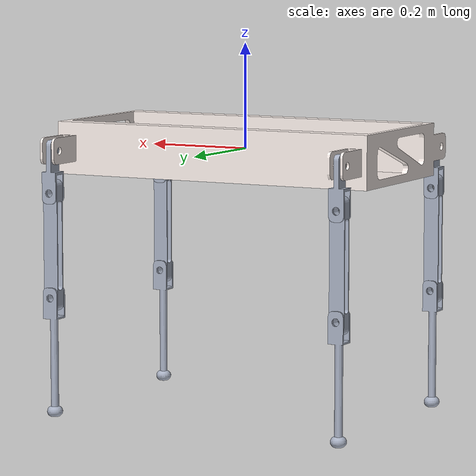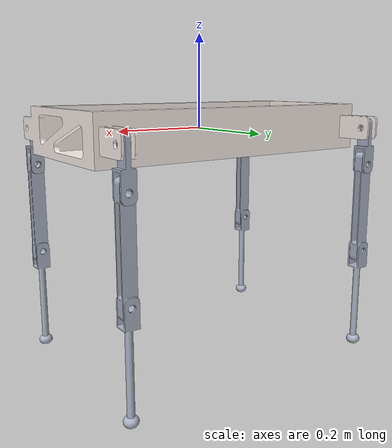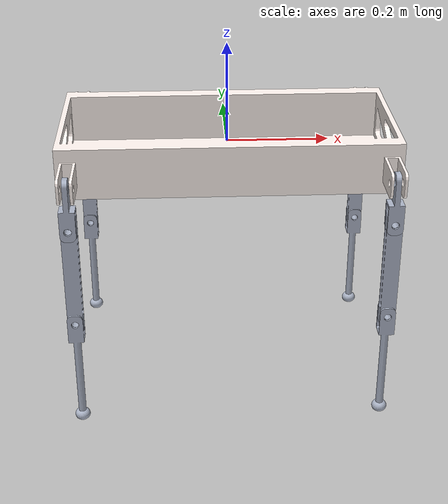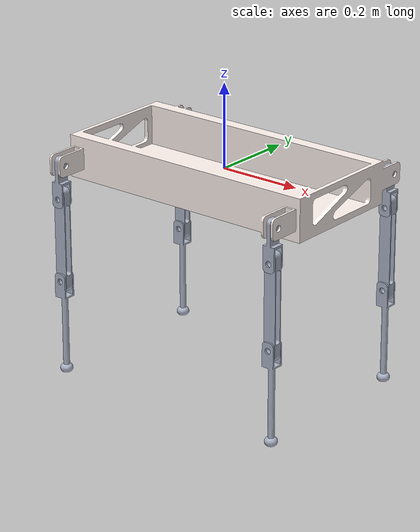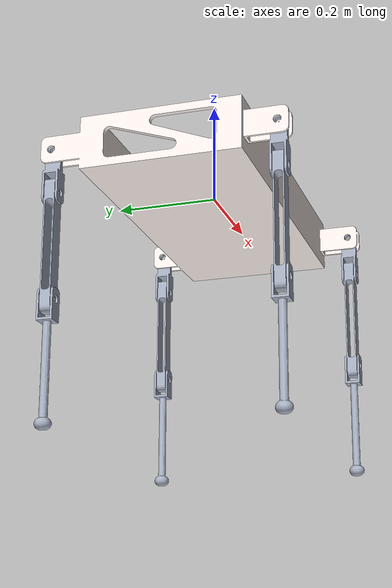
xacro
<?xml version="1.0" ?>
<!-- |    This document was autogenerated by xacro from /media/aditya/Work/THESIS/MT_Thesis/Quadruped/ROS/quadroit_ws/src/quadroit_v1/urdf/quadroitv1.urdf.xacro | -->
<!-- |    EDITING THIS FILE BY HAND IS NOT RECOMMENDED                                 | -->
<robot name="quadroit_v1" xmlns:xacro="http://ros.org/wiki/xacro">
    <link name="base_link">

<inertial>
            <origin rpy="0 0 0" xyz="0 0 0" />
            <mass value="10" />
            <inertia ixx="1.0" ixy="0.0" ixz="0.0" iyy="1.0" iyz="0.0" izz="1.0" />
        </inertial>

        <visual>
            <origin rpy="0 0 0" xyz="0 0 0" />
            <geometry>
                <mesh filename="package://quadroit_v1/meshes/base_link_torso.STL" />
            </geometry>
            <material name="">
                <color rgba="1 0.95686 0.93725 1" />
            </material>
        </visual>
        <collision>
            <origin rpy="0 0 0" xyz="0 0 0" />
            <geometry>
                <mesh filename="package://quadroit_v1/meshes/base_link_torso.STL" />
            </geometry>
        </collision>
    </link>
    <link name="hip_link_lf">

<inertial>
            <origin rpy="0 0 0" xyz="0.04 0 0" />
            <mass value="2" />
            <inertia ixx="1.0" ixy="0.0" ixz="0.0" iyy="1.0" iyz="0.0" izz="1.0" />
        </inertial>

        <visual>
            <origin rpy="0 0 0" xyz="0 0 0" />
            <geometry>
                <mesh filename="package://quadroit_v1/meshes/leg_fr_hip.STL" />
            </geometry>
            <material name="">
                <color rgba="0.66667 0.69804 0.76863 1" />
            </material>
        </visual>
        <collision>
            <origin rpy="0 0 0" xyz="0 0 0" />
            <geometry>
                <mesh filename="package://quadroit_v1/meshes/leg_fr_hip.STL" />
            </geometry>
        </collision>
    </link>
    <joint name="hip_joint_lf" type="revolute">
        <axis xyz="0 0 1" />
        <limit effort="1000.0" lower="-1.57075" upper="1.57075" velocity="0.5" />
        <parent link="base_link" />
        <child link="hip_link_lf" />
        <origin rpy="1.57075 1.57075 1.57075" xyz="0.3 0.21 0" />
    </joint>
    <link name="thigh_link_lf">

<inertial>
            <origin rpy="0 0 0" xyz="0.1 0 0" />
            <mass value="2" />
            <inertia ixx="1.0" ixy="0.0" ixz="0.0" iyy="1.0" iyz="0.0" izz="1.0" />
        </inertial>

        <visual>
            <origin rpy="0 0 0" xyz="0 0 0" />
            <geometry>
                <mesh filename="package://quadroit_v1/meshes/leg_fr_thigh.STL" />
            </geometry>
            <material name="">
                <color rgba="0.66667 0.69804 0.76863 1" />
            </material>
        </visual>
        <collision>
            <origin rpy="0 0 0" xyz="0 0 0" />
            <geometry>
                <mesh filename="package://quadroit_v1/meshes/leg_fr_thigh.STL" />
            </geometry>
        </collision>
    </link>
    <joint name="elbow_joint_lf" type="revolute">
        <axis xyz="0 0 1" />
        <limit effort="1000.0" lower="-1.57075" upper="1.57075" velocity="0.5" />
        <parent link="hip_link_lf" />
        <child link="thigh_link_lf" />
        <origin rpy="1.57075 0 0" xyz="0.08 0 0" />
    </joint>
    <link name="shank_link_lf">

<inertial>
            <origin rpy="0 0 0" xyz="0.11 0 0" />
            <mass value="2" />
            <inertia ixx="1.0" ixy="0.0" ixz="0.0" iyy="1.0" iyz="0.0" izz="1.0" />
        </inertial>

        <visual>
            <origin rpy="0 0 0" xyz="0 0 0" />
            <geometry>
                <mesh filename="package://quadroit_v1/meshes/leg_fr_shank.STL" />
            </geometry>
            <material name="">
                <color rgba="0.66667 0.69804 0.76863 1" />
            </material>
        </visual>
        <collision>
            <origin rpy="0 0 0" xyz="0 0 0" />
            <geometry>
                <mesh filename="package://quadroit_v1/meshes/leg_fr_shank.STL" />
            </geometry>
        </collision>
    </link>
    <joint name="wrist_joint_lf" type="revolute">
        <axis xyz="0 0 1" />
        <limit effort="1000.0" lower="-1.57075" upper="1.57075" velocity="0.5" />
        <parent link="thigh_link_lf" />
        <child link="shank_link_lf" />
        <origin rpy="0 0 0" xyz="0.2 0 0" />
    </joint>
    <link name="feet_link_lf">
    </link>
    <joint name="feet_lf" type="fixed">
        <parent link="shank_link_lf" />
        <child link="feet_link_lf" />
        <origin xyz="0.23 0 0" />
    </joint>
    <link name="hip_link_rf">

<inertial>
            <origin rpy="0 0 0" xyz="0.04 0 0" />
            <mass value="2" />
            <inertia ixx="1.0" ixy="0.0" ixz="0.0" iyy="1.0" iyz="0.0" izz="1.0" />
        </inertial>

        <visual>
            <origin rpy="0 0 0" xyz="0 0 0" />
            <geometry>
                <mesh filename="package://quadroit_v1/meshes/leg_fr_hip.STL" />
            </geometry>
            <material name="">
                <color rgba="0.66667 0.69804 0.76863 1" />
            </material>
        </visual>
        <collision>
            <origin rpy="0 0 0" xyz="0 0 0" />
            <geometry>
                <mesh filename="package://quadroit_v1/meshes/leg_fr_hip.STL" />
            </geometry>
        </collision>
    </link>
    <joint name="hip_joint_rf" type="revolute">
        <axis xyz="0 0 1" />
        <limit effort="1000.0" lower="-1.57075" upper="1.57075" velocity="0.5" />
        <parent link="base_link" />
        <child link="hip_link_rf" />
        <origin rpy="1.57075 1.57075 1.57075" xyz="0.3 -0.21 0" />
    </joint>
    <link name="thigh_link_rf">

<inertial>
            <origin rpy="0 0 0" xyz="0.1 0 0" />
            <mass value="2" />
            <inertia ixx="1.0" ixy="0.0" ixz="0.0" iyy="1.0" iyz="0.0" izz="1.0" />
        </inertial>

        <visual>
            <origin rpy="0 0 0" xyz="0 0 0" />
            <geometry>
                <mesh filename="package://quadroit_v1/meshes/leg_fr_thigh.STL" />
            </geometry>
            <material name="">
                <color rgba="0.66667 0.69804 0.76863 1" />
            </material>
        </visual>
        <collision>
            <origin rpy="0 0 0" xyz="0 0 0" />
            <geometry>
                <mesh filename="package://quadroit_v1/meshes/leg_fr_thigh.STL" />
            </geometry>
        </collision>
    </link>
    <joint name="elbow_joint_rf" type="revolute">
        <axis xyz="0 0 1" />
        <limit effort="1000.0" lower="-1.57075" upper="1.57075" velocity="0.5" />
        <parent link="hip_link_rf" />
        <child link="thigh_link_rf" />
        <origin rpy="1.57075 0 0" xyz="0.08 0 0" />
    </joint>
    <link name="shank_link_rf">

<inertial>
            <origin rpy="0 0 0" xyz="0.11 0 0" />
            <mass value="2" />
            <inertia ixx="1.0" ixy="0.0" ixz="0.0" iyy="1.0" iyz="0.0" izz="1.0" />
        </inertial>

        <visual>
            <origin rpy="0 0 0" xyz="0 0 0" />
            <geometry>
                <mesh filename="package://quadroit_v1/meshes/leg_fr_shank.STL" />
            </geometry>
            <material name="">
                <color rgba="0.66667 0.69804 0.76863 1" />
            </material>
        </visual>
        <collision>
            <origin rpy="0 0 0" xyz="0 0 0" />
            <geometry>
                <mesh filename="package://quadroit_v1/meshes/leg_fr_shank.STL" />
            </geometry>
        </collision>
    </link>
    <joint name="wrist_joint_rf" type="revolute">
        <axis xyz="0 0 1" />
        <limit effort="1000.0" lower="-1.57075" upper="1.57075" velocity="0.5" />
        <parent link="thigh_link_rf" />
        <child link="shank_link_rf" />
        <origin rpy="0 0 0" xyz="0.2 0 0" />
    </joint>
    <link name="feet_link_rf">
    </link>
    <joint name="feet_rf" type="fixed">
        <parent link="shank_link_rf" />
        <child link="feet_link_rf" />
        <origin xyz="0.23 0 0" />
    </joint>
    <link name="hip_link_lb">

<inertial>
            <origin rpy="0 0 0" xyz="0.04 0 0" />
            <mass value="2" />
            <inertia ixx="1.0" ixy="0.0" ixz="0.0" iyy="1.0" iyz="0.0" izz="1.0" />
        </inertial>

        <visual>
            <origin rpy="0 0 0" xyz="0 0 0" />
            <geometry>
                <mesh filename="package://quadroit_v1/meshes/leg_fr_hip.STL" />
            </geometry>
            <material name="">
                <color rgba="0.66667 0.69804 0.76863 1" />
            </material>
        </visual>
        <collision>
            <origin rpy="0 0 0" xyz="0 0 0" />
            <geometry>
                <mesh filename="package://quadroit_v1/meshes/leg_fr_hip.STL" />
            </geometry>
        </collision>
    </link>
    <joint name="hip_joint_lb" type="revolute">
        <axis xyz="0 0 1" />
        <limit effort="1000.0" lower="-1.57075" upper="1.57075" velocity="0.5" />
        <parent link="base_link" />
        <child link="hip_link_lb" />
        <origin rpy="1.57075 1.57075 1.57075" xyz="-0.3 0.21 0" />
    </joint>
    <link name="thigh_link_lb">

<inertial>
            <origin rpy="0 0 0" xyz="0.1 0 0" />
            <mass value="2" />
            <inertia ixx="1.0" ixy="0.0" ixz="0.0" iyy="1.0" iyz="0.0" izz="1.0" />
        </inertial>

        <visual>
            <origin rpy="0 0 0" xyz="0 0 0" />
            <geometry>
                <mesh filename="package://quadroit_v1/meshes/leg_fr_thigh.STL" />
            </geometry>
            <material name="">
                <color rgba="0.66667 0.69804 0.76863 1" />
            </material>
        </visual>
        <collision>
            <origin rpy="0 0 0" xyz="0 0 0" />
            <geometry>
                <mesh filename="package://quadroit_v1/meshes/leg_fr_thigh.STL" />
            </geometry>
        </collision>
    </link>
    <joint name="elbow_joint_lb" type="revolute">
        <axis xyz="0 0 1" />
        <limit effort="1000.0" lower="-1.57075" upper="1.57075" velocity="0.5" />
        <parent link="hip_link_lb" />
        <child link="thigh_link_lb" />
        <origin rpy="1.57075 0 0" xyz="0.08 0 0" />
    </joint>
    <link name="shank_link_lb">

<inertial>
            <origin rpy="0 0 0" xyz="0.11 0 0" />
            <mass value="2" />
            <inertia ixx="1.0" ixy="0.0" ixz="0.0" iyy="1.0" iyz="0.0" izz="1.0" />
        </inertial>

        <visual>
            <origin rpy="0 0 0" xyz="0 0 0" />
            <geometry>
                <mesh filename="package://quadroit_v1/meshes/leg_fr_shank.STL" />
            </geometry>
            <material name="">
                <color rgba="0.66667 0.69804 0.76863 1" />
            </material>
        </visual>
        <collision>
            <origin rpy="0 0 0" xyz="0 0 0" />
            <geometry>
                <mesh filename="package://quadroit_v1/meshes/leg_fr_shank.STL" />
            </geometry>
        </collision>
    </link>
    <joint name="wrist_joint_lb" type="revolute">
        <axis xyz="0 0 1" />
        <limit effort="1000.0" lower="-1.57075" upper="1.57075" velocity="0.5" />
        <parent link="thigh_link_lb" />
        <child link="shank_link_lb" />
        <origin rpy="0 0 0" xyz="0.2 0 0" />
    </joint>
    <link name="feet_link_lb">
    </link>
    <joint name="feet_lb" type="fixed">
        <parent link="shank_link_lb" />
        <child link="feet_link_lb" />
        <origin xyz="0.23 0 0" />
    </joint>
    <link name="hip_link_rb">

<inertial>
            <origin rpy="0 0 0" xyz="0.04 0 0" />
            <mass value="2" />
            <inertia ixx="1.0" ixy="0.0" ixz="0.0" iyy="1.0" iyz="0.0" izz="1.0" />
        </inertial>

        <visual>
            <origin rpy="0 0 0" xyz="0 0 0" />
            <geometry>
                <mesh filename="package://quadroit_v1/meshes/leg_fr_hip.STL" />
            </geometry>
            <material name="">
                <color rgba="0.66667 0.69804 0.76863 1" />
            </material>
        </visual>
        <collision>
            <origin rpy="0 0 0" xyz="0 0 0" />
            <geometry>
                <mesh filename="package://quadroit_v1/meshes/leg_fr_hip.STL" />
            </geometry>
        </collision>
    </link>
    <joint name="hip_joint_rb" type="revolute">
        <axis xyz="0 0 1" />
        <limit effort="1000.0" lower="-1.57075" upper="1.57075" velocity="0.5" />
        <parent link="base_link" />
        <child link="hip_link_rb" />
        <origin rpy="1.57075 1.57075 1.57075" xyz="-0.3 -0.21 0" />
    </joint>
    <link name="thigh_link_rb">

<inertial>
            <origin rpy="0 0 0" xyz="0.1 0 0" />
            <mass value="2" />
            <inertia ixx="1.0" ixy="0.0" ixz="0.0" iyy="1.0" iyz="0.0" izz="1.0" />
        </inertial>

        <visual>
            <origin rpy="0 0 0" xyz="0 0 0" />
            <geometry>
                <mesh filename="package://quadroit_v1/meshes/leg_fr_thigh.STL" />
            </geometry>
            <material name="">
                <color rgba="0.66667 0.69804 0.76863 1" />
            </material>
        </visual>
        <collision>
            <origin rpy="0 0 0" xyz="0 0 0" />
            <geometry>
                <mesh filename="package://quadroit_v1/meshes/leg_fr_thigh.STL" />
            </geometry>
        </collision>
    </link>
    <joint name="elbow_joint_rb" type="revolute">
        <axis xyz="0 0 1" />
        <limit effort="1000.0" lower="-1.57075" upper="1.57075" velocity="0.5" />
        <parent link="hip_link_rb" />
        <child link="thigh_link_rb" />
        <origin rpy="1.57075 0 0" xyz="0.08 0 0" />
    </joint>
    <link name="shank_link_rb">

<inertial>
            <origin rpy="0 0 0" xyz="0.11 0 0" />
            <mass value="2" />
            <inertia ixx="1.0" ixy="0.0" ixz="0.0" iyy="1.0" iyz="0.0" izz="1.0" />
        </inertial>

        <visual>
            <origin rpy="0 0 0" xyz="0 0 0" />
            <geometry>
                <mesh filename="package://quadroit_v1/meshes/leg_fr_shank.STL" />
            </geometry>
            <material name="">
                <color rgba="0.66667 0.69804 0.76863 1" />
            </material>
        </visual>
        <collision>
            <origin rpy="0 0 0" xyz="0 0 0" />
            <geometry>
                <mesh filename="package://quadroit_v1/meshes/leg_fr_shank.STL" />
            </geometry>
        </collision>
    </link>
    <joint name="wrist_joint_rb" type="revolute">
        <axis xyz="0 0 1" />
        <limit effort="1000.0" lower="-1.57075" upper="1.57075" velocity="0.5" />
        <parent link="thigh_link_rb" />
        <child link="shank_link_rb" />
        <origin rpy="0 0 0" xyz="0.2 0 0" />
    </joint>
    <link name="feet_link_rb">
    </link>
    <joint name="feet_rb" type="fixed">
        <parent link="shank_link_rb" />
        <child link="feet_link_rb" />
        <origin xyz="0.23 0 0" />
    </joint>

<transmission name="trans_hip_joint_lf">
        <type>transmission_interface/SimpleTransmission</type>
        <joint name="hip_joint_lf">
            <hardwareInterface>hardware_interface/EffortJointInterface</hardwareInterface>
        </joint>
        <actuator name="hip_joint_lf_motor">
            <hardwareInterface>hardware_interface/EffortJointInterface</hardwareInterface>
            <mechanicalReduction>1</mechanicalReduction>
        </actuator>
    </transmission>
    <transmission name="trans_elbow_joint_lf">
        <type>transmission_interface/SimpleTransmission</type>
        <joint name="elbow_joint_lf">
            <hardwareInterface>hardware_interface/EffortJointInterface</hardwareInterface>
        </joint>
        <actuator name="elbow_joint_lf_motor">
            <hardwareInterface>hardware_interface/EffortJointInterface</hardwareInterface>
            <mechanicalReduction>1</mechanicalReduction>
        </actuator>
    </transmission>
    <transmission name="trans_wrist_joint_lf">
        <type>transmission_interface/SimpleTransmission</type>
        <joint name="wrist_joint_lf">
            <hardwareInterface>hardware_interface/EffortJointInterface</hardwareInterface>
        </joint>
        <actuator name="wrist_joint_lf_motor">
            <hardwareInterface>hardware_interface/EffortJointInterface</hardwareInterface>
            <mechanicalReduction>1</mechanicalReduction>
        </actuator>
    </transmission>
    <transmission name="trans_hip_joint_rf">
        <type>transmission_interface/SimpleTransmission</type>
        <joint name="hip_joint_rf">
            <hardwareInterface>hardware_interface/EffortJointInterface</hardwareInterface>
        </joint>
        <actuator name="hip_joint_rf_motor">
            <hardwareInterface>hardware_interface/EffortJointInterface</hardwareInterface>
            <mechanicalReduction>1</mechanicalReduction>
        </actuator>
    </transmission>
    <transmission name="trans_elbow_joint_rf">
        <type>transmission_interface/SimpleTransmission</type>
        <joint name="elbow_joint_rf">
            <hardwareInterface>hardware_interface/EffortJointInterface</hardwareInterface>
        </joint>
        <actuator name="elbow_joint_rf_motor">
            <hardwareInterface>hardware_interface/EffortJointInterface</hardwareInterface>
            <mechanicalReduction>1</mechanicalReduction>
        </actuator>
    </transmission>
    <transmission name="trans_wrist_joint_rf">
        <type>transmission_interface/SimpleTransmission</type>
        <joint name="wrist_joint_rf">
            <hardwareInterface>hardware_interface/EffortJointInterface</hardwareInterface>
        </joint>
        <actuator name="wrist_joint_rf_motor">
            <hardwareInterface>hardware_interface/EffortJointInterface</hardwareInterface>
            <mechanicalReduction>1</mechanicalReduction>
        </actuator>
    </transmission>
    <transmission name="trans_hip_joint_lb">
        <type>transmission_interface/SimpleTransmission</type>
        <joint name="hip_joint_lb">
            <hardwareInterface>hardware_interface/EffortJointInterface</hardwareInterface>
        </joint>
        <actuator name="hip_joint_lb_motor">
            <hardwareInterface>hardware_interface/EffortJointInterface</hardwareInterface>
            <mechanicalReduction>1</mechanicalReduction>
        </actuator>
    </transmission>
    <transmission name="trans_elbow_joint_lb">
        <type>transmission_interface/SimpleTransmission</type>
        <joint name="elbow_joint_lb">
            <hardwareInterface>hardware_interface/EffortJointInterface</hardwareInterface>
        </joint>
        <actuator name="elbow_joint_lb_motor">
            <hardwareInterface>hardware_interface/EffortJointInterface</hardwareInterface>
            <mechanicalReduction>1</mechanicalReduction>
        </actuator>
    </transmission>
    <transmission name="trans_wrist_joint_lb">
        <type>transmission_interface/SimpleTransmission</type>
        <joint name="wrist_joint_lb">
            <hardwareInterface>hardware_interface/EffortJointInterface</hardwareInterface>
        </joint>
        <actuator name="wrist_joint_lb_motor">
            <hardwareInterface>hardware_interface/EffortJointInterface</hardwareInterface>
            <mechanicalReduction>1</mechanicalReduction>
        </actuator>
    </transmission>
    <transmission name="trans_hip_joint_rb">
        <type>transmission_interface/SimpleTransmission</type>
        <joint name="hip_joint_rb">
            <hardwareInterface>hardware_interface/EffortJointInterface</hardwareInterface>
        </joint>
        <actuator name="hip_joint_rb_motor">
            <hardwareInterface>hardware_interface/EffortJointInterface</hardwareInterface>
            <mechanicalReduction>1</mechanicalReduction>
        </actuator>
    </transmission>
    <transmission name="trans_elbow_joint_rb">
        <type>transmission_interface/SimpleTransmission</type>
        <joint name="elbow_joint_rb">
            <hardwareInterface>hardware_interface/EffortJointInterface</hardwareInterface>
        </joint>
        <actuator name="elbow_joint_rb_motor">
            <hardwareInterface>hardware_interface/EffortJointInterface</hardwareInterface>
            <mechanicalReduction>1</mechanicalReduction>
        </actuator>
    </transmission>
    <transmission name="trans_wrist_joint_rb">
        <type>transmission_interface/SimpleTransmission</type>
        <joint name="wrist_joint_rb">
            <hardwareInterface>hardware_interface/EffortJointInterface</hardwareInterface>
        </joint>
        <actuator name="wrist_joint_rb_motor">
            <hardwareInterface>hardware_interface/EffortJointInterface</hardwareInterface>
            <mechanicalReduction>1</mechanicalReduction>
        </actuator>
    </transmission>
    <gazebo>
        <plugin name="gazebo_ros_control" filename="libgazebo_ros_control.so">
            <robotNamespace>/</robotNamespace>
        </plugin>
    </gazebo>
</robot>
